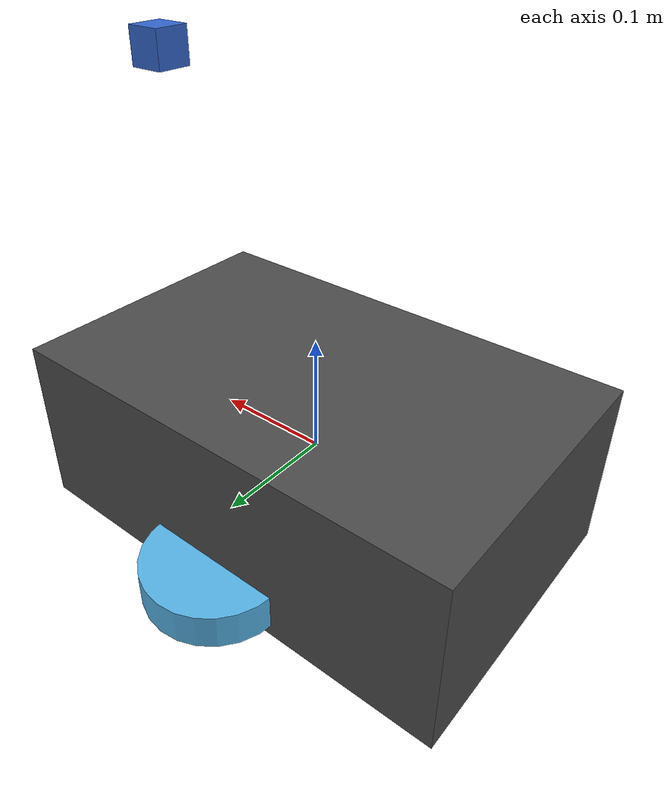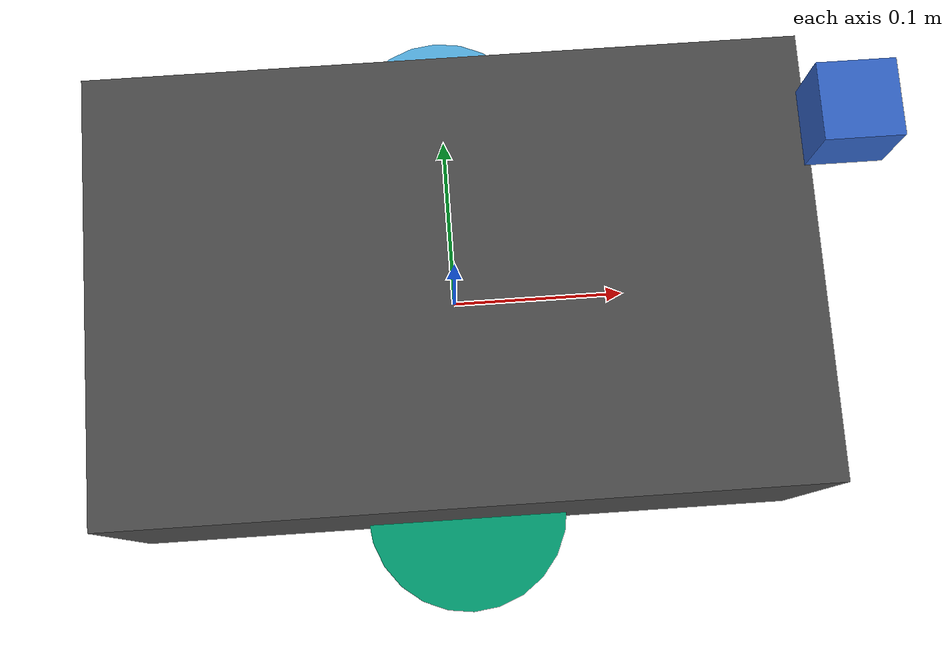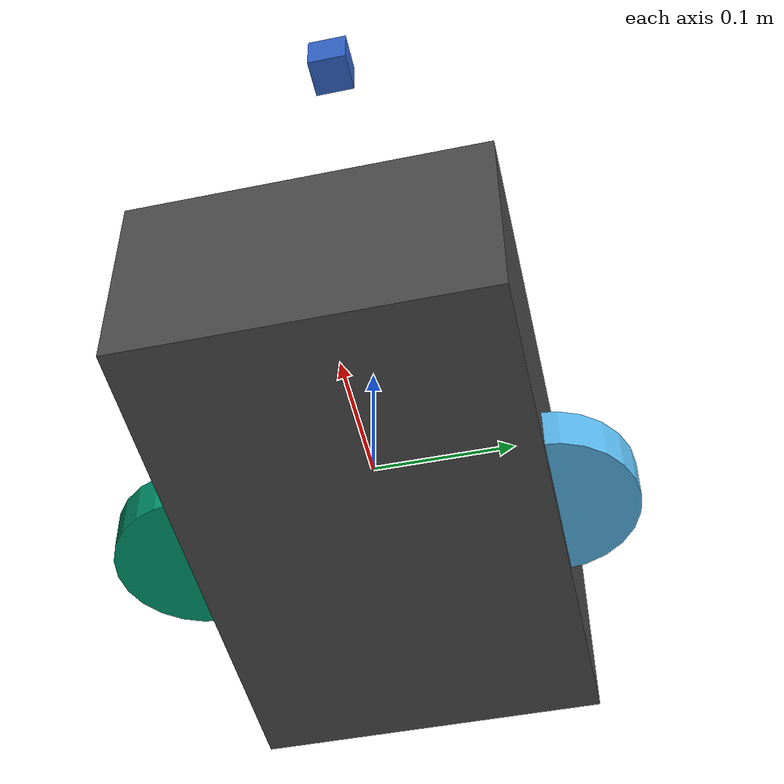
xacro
<?xml version="1.0"?>
<robot xmlns:xacro="http://www.ros.org/wiki/xacro" name="______C3">
<!-- ── Materials ── -->
<material name="base_grey">
<color rgba="0.3 0.3 0.3 1"/>
</material>
<material name="link_grey">
<color rgba="0.5 0.5 0.5 1"/>
</material>
<material name="sensor_blue">
<color rgba="0.2 0.4 0.8 1"/>
</material>

<!-- Base Link                               -->
<link name="base_link">
<inertial>
<mass value="3.0"/>
<inertia ixx="0.2" ixy="0" ixz="0" iyy="0.2" iyz="0" izz="0.2"/>
</inertial>
<visual>
<geometry>
<box size="0.4 0.25 0.15"/>
</geometry>
<material name="base_grey"/>
</visual>
<collision>
<geometry>
<box size="0.4 0.25 0.15"/>
</geometry>
</collision>
</link>

<!-- Mobile Base (Wheels)                    -->

<!-- Active: left_front_wheel (Motor: dji-m3508) -->
<link name="left_front_wheel">
<inertial>
<mass value="0.15"/>
<inertia ixx="0.0005" ixy="0" ixz="0" iyy="0.0005" iyz="0" izz="0.0005"/>
</inertial>
<visual>
<geometry><cylinder radius="0.06" length="0.03"/></geometry>
</visual>
</link>
<joint name="left_front_wheel_joint" type="continuous">
<parent link="base_link"/>
<child link="left_front_wheel"/>

<origin xyz="0 0.12 -0.05" rpy="0 0 0"/>

<axis xyz="0 1 0"/>
</joint>

<!-- Active: right_front_wheel (Motor: dji-m3508) -->
<link name="right_front_wheel">
<inertial>
<mass value="0.15"/>
<inertia ixx="0.0005" ixy="0" ixz="0" iyy="0.0005" iyz="0" izz="0.0005"/>
</inertial>
<visual>
<geometry><cylinder radius="0.06" length="0.03"/></geometry>
</visual>
</link>
<joint name="right_front_wheel_joint" type="continuous">
<parent link="base_link"/>
<child link="right_front_wheel"/>

<origin xyz="0 -0.12 -0.05" rpy="0 0 0"/>

<axis xyz="0 1 0"/>
</joint>

<!-- Active: left_rear_wheel (Motor: dji-m3508) -->
<link name="left_rear_wheel">
<inertial>
<mass value="0.15"/>
<inertia ixx="0.0005" ixy="0" ixz="0" iyy="0.0005" iyz="0" izz="0.0005"/>
</inertial>
<visual>
<geometry><cylinder radius="0.06" length="0.03"/></geometry>
</visual>
</link>
<joint name="left_rear_wheel_joint" type="continuous">
<parent link="base_link"/>
<child link="left_rear_wheel"/>

<origin xyz="0 0.12 -0.05" rpy="0 0 0"/>

<axis xyz="0 1 0"/>
</joint>

<!-- Active: right_rear_wheel (Motor: dji-m3508) -->
<link name="right_rear_wheel">
<inertial>
<mass value="0.15"/>
<inertia ixx="0.0005" ixy="0" ixz="0" iyy="0.0005" iyz="0" izz="0.0005"/>
</inertial>
<visual>
<geometry><cylinder radius="0.06" length="0.03"/></geometry>
</visual>
</link>
<joint name="right_rear_wheel_joint" type="continuous">
<parent link="base_link"/>
<child link="right_rear_wheel"/>

<origin xyz="0 -0.12 -0.05" rpy="0 0 0"/>

<axis xyz="0 1 0"/>
</joint>

<!-- ── Sensor Mounts ── -->

<link name="lidar_mount">
<inertial>
<mass value="0.01"/>
<inertia ixx="1e-6" ixy="0" ixz="0" iyy="1e-6" iyz="0" izz="1e-6"/>
</inertial>
<visual>
<geometry><box size="0.03 0.03 0.03"/></geometry>
<material name="sensor_blue"/>
</visual>
</link>
<joint name="lidar_joint" type="fixed">
<parent link="base_link"/>
<child link="lidar_mount"/>
<origin xyz="0.15 0 0.3"
rpy="0 0 0"/>
</joint>

<link name="imu_mount">
<inertial>
<mass value="0.01"/>
<inertia ixx="1e-6" ixy="0" ixz="0" iyy="1e-6" iyz="0" izz="1e-6"/>
</inertial>
<visual>
<geometry><box size="0.03 0.03 0.03"/></geometry>
<material name="sensor_blue"/>
</visual>
</link>
<joint name="imu_joint" type="fixed">
<parent link="base_link"/>
<child link="imu_mount"/>
<origin xyz="0 0 0.05"
rpy="0 0 0"/>
</joint>

<!-- ── @ai-extend: Add custom links and joints below ── -->
</robot>
